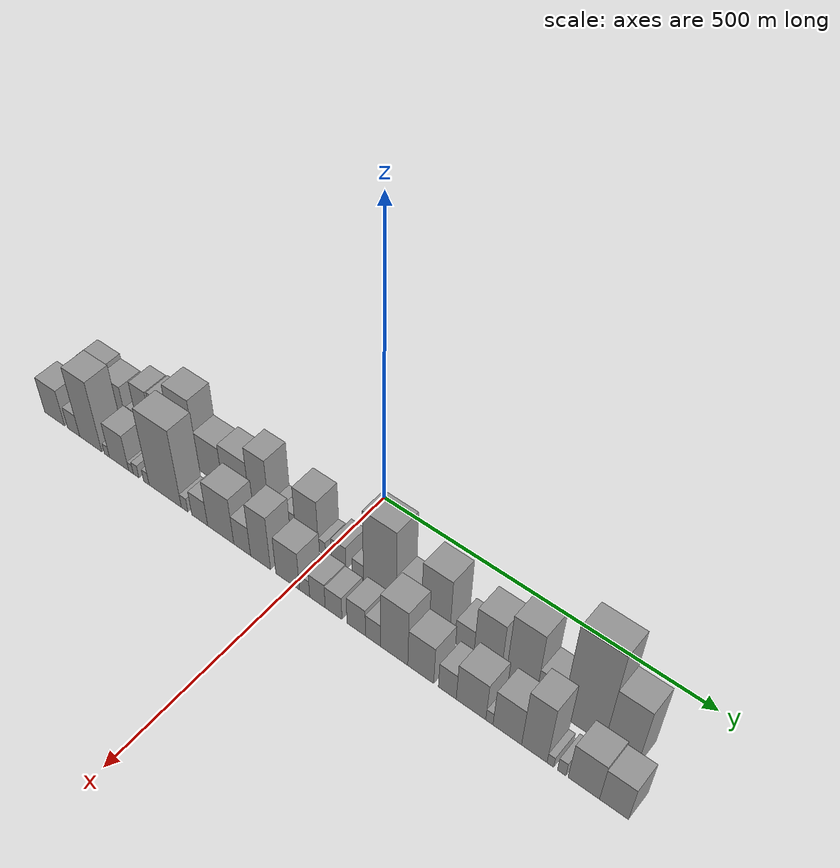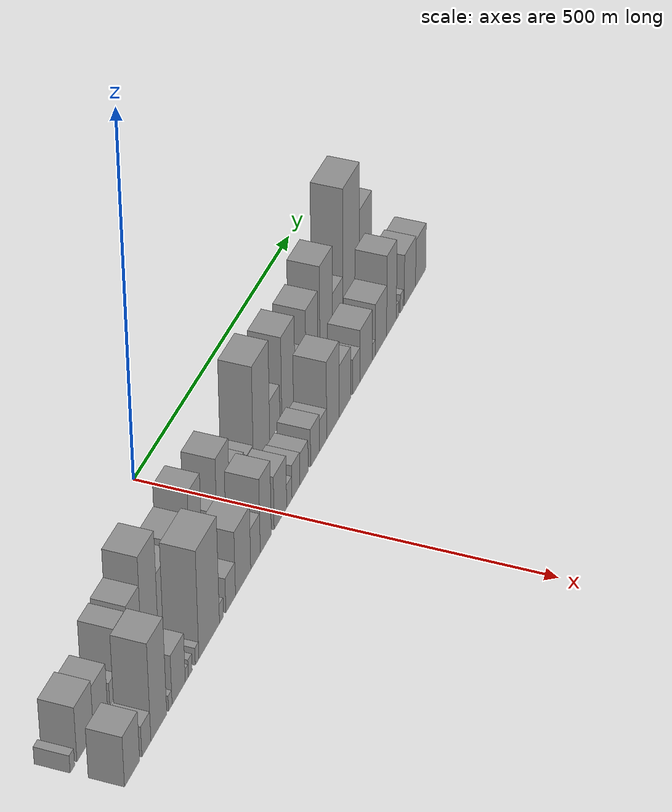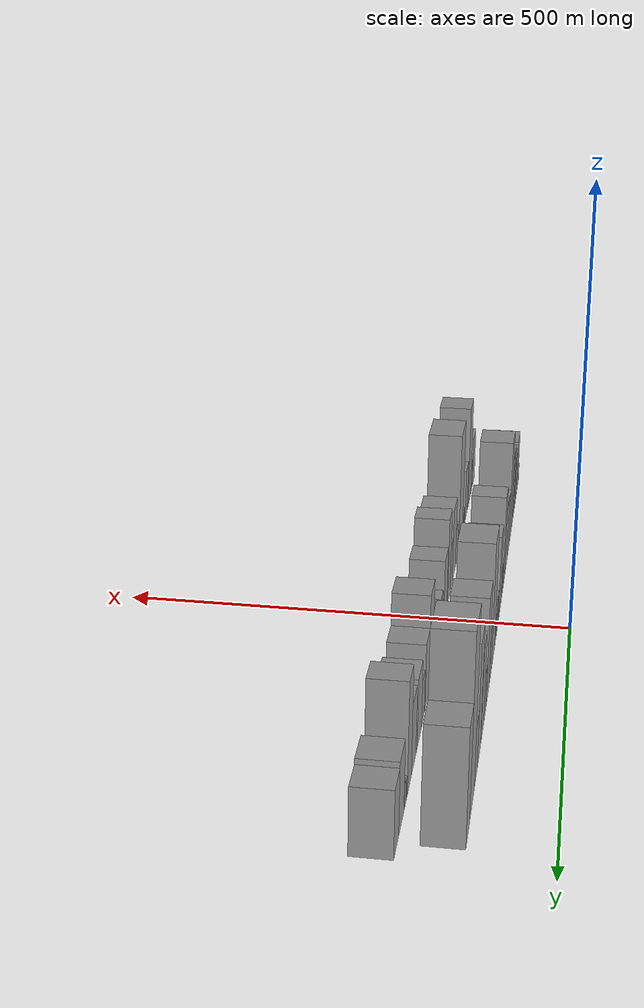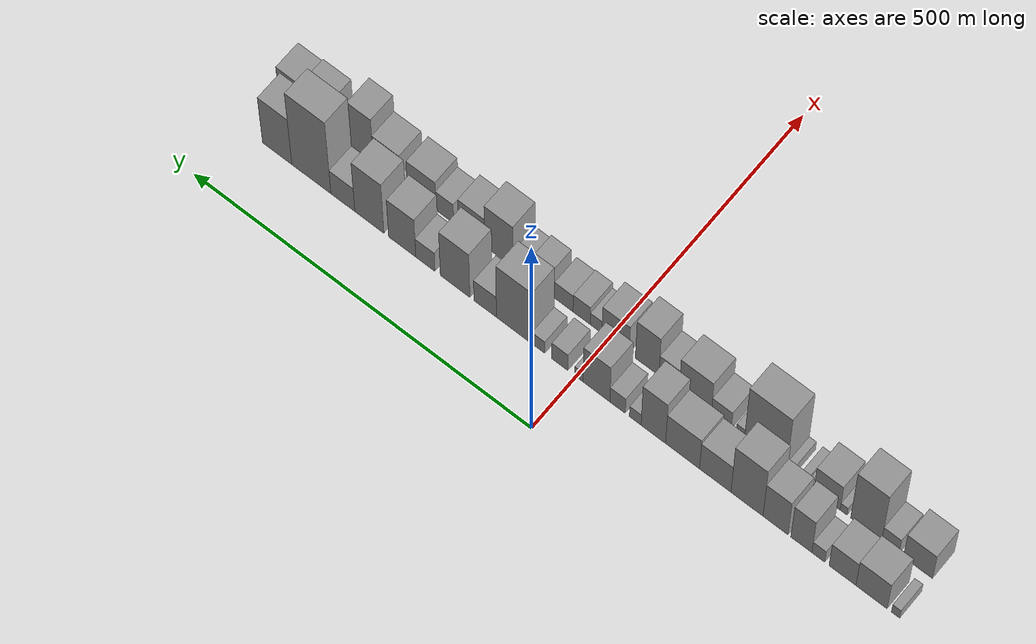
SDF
<sdf version="1.6">
 <world name="default">
  <scene>
   <sky><clouds><speed>12</speed></clouds></sky>
   <ambient>0.4 0.4 0.4 1</ambient>
   <background>0.7 0.7 0.7 1</background>
   <shadows>1</shadows>
  </scene>
  <gravity>0 0 -9.8066</gravity>
  <magnetic_field>6e-06 2.3e-05 -4.2e-05</magnetic_field>
  <physics default="0" name="default_physics" type="ode">
   <ode>
    <solver>
     <type>quick</type>
     <iters>10</iters>
     <sor>1.0</sor>
     <use_dynamic_moi_rescaling>0</use_dynamic_moi_rescaling>
    </solver>
    <constraints>
     <cfm>0</cfm>
     <erp>0.2</erp>
     <contact_max_correcting_vel>100</contact_max_correcting_vel>
     <contact_surface_layer>0.001</contact_surface_layer>
    </constraints>
   </ode>
   <max_step_size>0.004</max_step_size>
   <real_time_factor>1</real_time_factor>
   <real_time_update_rate>250</real_time_update_rate>
  </physics>
  <light name="sun" type="directional">
   <pose>0 0 10 0 0 0</pose>
   <diffuse>0.8 0.8 0.8 1</diffuse>
   <specular>0.2 0.2 0.2 1</specular>
   <attenuation>
    <range>1000</range>
    <constant>0.9</constant>
    <linear>0.01</linear>
    <quadratic>0.001</quadratic>
   </attenuation>
   <direction>-0.5 0.1 -0.9</direction>
  </light>
  <model name="building_1">
   <static>1</static>
   <pose>100.0000 -454.2006 0 0.000000 0.000000 0.000000</pose>
   <link name="link">
    <pose>0 0 12.00 0 0 0</pose>
    <collision name="collision"><geometry><box><size>40.0000 11.5988 24.0000</size></box></geometry></collision>
    <visual name="visual">
     <cast_shadows>0</cast_shadows>
     <geometry><box><size>40.0000 11.5988 24.0000</size></box></geometry>
     <material>
      <script>
       <uri>model://grey_wall/materials/scripts</uri>
       <uri>model://grey_wall/materials/textures</uri>
       <name>vrc/grey_wall</name>
      </script>
     </material>
    </visual>
   </link>
  </model>
  <model name="building_2">
   <static>1</static>
   <pose>100.0000 -420.6430 0 0.000000 0.000000 0.000000</pose>
   <link name="link">
    <pose>0 0 37.50 0 0 0</pose>
    <collision name="collision"><geometry><box><size>40.0000 43.5163 75.0000</size></box></geometry></collision>
    <visual name="visual">
     <cast_shadows>0</cast_shadows>
     <geometry><box><size>40.0000 43.5163 75.0000</size></box></geometry>
     <material>
      <script>
       <uri>model://grey_wall/materials/scripts</uri>
       <uri>model://grey_wall/materials/textures</uri>
       <name>vrc/grey_wall</name>
      </script>
     </material>
    </visual>
   </link>
  </model>
  <model name="building_3">
   <static>1</static>
   <pose>100.0000 -380.0215 0 0.000000 0.000000 0.000000</pose>
   <link name="link">
    <pose>0 0 33.00 0 0 0</pose>
    <collision name="collision"><geometry><box><size>40.0000 37.7266 66.0000</size></box></geometry></collision>
    <visual name="visual">
     <cast_shadows>0</cast_shadows>
     <geometry><box><size>40.0000 37.7266 66.0000</size></box></geometry>
     <material>
      <script>
       <uri>model://grey_wall/materials/scripts</uri>
       <uri>model://grey_wall/materials/textures</uri>
       <name>vrc/grey_wall</name>
      </script>
     </material>
    </visual>
   </link>
  </model>
  <model name="building_4">
   <static>1</static>
   <pose>100.0000 -346.0598 0 0.000000 0.000000 0.000000</pose>
   <link name="link">
    <pose>0 0 16.50 0 0 0</pose>
    <collision name="collision"><geometry><box><size>40.0000 18.1968 33.0000</size></box></geometry></collision>
    <visual name="visual">
     <cast_shadows>0</cast_shadows>
     <geometry><box><size>40.0000 18.1968 33.0000</size></box></geometry>
     <material>
      <script>
       <uri>model://grey_wall/materials/scripts</uri>
       <uri>model://grey_wall/materials/textures</uri>
       <name>vrc/grey_wall</name>
      </script>
     </material>
    </visual>
   </link>
  </model>
  <model name="building_5">
   <static>1</static>
   <pose>100.0000 -322.1338 0 0.000000 0.000000 0.000000</pose>
   <link name="link">
    <pose>0 0 46.50 0 0 0</pose>
    <collision name="collision"><geometry><box><size>40.0000 29.6552 93.0000</size></box></geometry></collision>
    <visual name="visual">
     <cast_shadows>0</cast_shadows>
     <geometry><box><size>40.0000 29.6552 93.0000</size></box></geometry>
     <material>
      <script>
       <uri>model://grey_wall/materials/scripts</uri>
       <uri>model://grey_wall/materials/textures</uri>
       <name>vrc/grey_wall</name>
      </script>
     </material>
    </visual>
   </link>
  </model>
  <model name="building_6">
   <static>1</static>
   <pose>100.0000 -285.5968 0 0.000000 0.000000 0.000000</pose>
   <link name="link">
    <pose>0 0 48.00 0 0 0</pose>
    <collision name="collision"><geometry><box><size>40.0000 35.4189 96.0000</size></box></geometry></collision>
    <visual name="visual">
     <cast_shadows>0</cast_shadows>
     <geometry><box><size>40.0000 35.4189 96.0000</size></box></geometry>
     <material>
      <script>
       <uri>model://grey_wall/materials/scripts</uri>
       <uri>model://grey_wall/materials/textures</uri>
       <name>vrc/grey_wall</name>
      </script>
     </material>
    </visual>
   </link>
  </model>
  <model name="building_7">
   <static>1</static>
   <pose>100.0000 -245.2105 0 0.000000 0.000000 0.000000</pose>
   <link name="link">
    <pose>0 0 67.50 0 0 0</pose>
    <collision name="collision"><geometry><box><size>40.0000 45.3537 135.0000</size></box></geometry></collision>
    <visual name="visual">
     <cast_shadows>0</cast_shadows>
     <geometry><box><size>40.0000 45.3537 135.0000</size></box></geometry>
     <material>
      <script>
       <uri>model://grey_wall/materials/scripts</uri>
       <uri>model://grey_wall/materials/textures</uri>
       <name>vrc/grey_wall</name>
      </script>
     </material>
    </visual>
   </link>
  </model>
  <model name="building_8">
   <static>1</static>
   <pose>100.0000 -200.1541 0 0.000000 0.000000 0.000000</pose>
   <link name="link">
    <pose>0 0 37.50 0 0 0</pose>
    <collision name="collision"><geometry><box><size>40.0000 44.7592 75.0000</size></box></geometry></collision>
    <visual name="visual">
     <cast_shadows>0</cast_shadows>
     <geometry><box><size>40.0000 44.7592 75.0000</size></box></geometry>
     <material>
      <script>
       <uri>model://grey_wall/materials/scripts</uri>
       <uri>model://grey_wall/materials/textures</uri>
       <name>vrc/grey_wall</name>
      </script>
     </material>
    </visual>
   </link>
  </model>
  <model name="building_9">
   <static>1</static>
   <pose>100.0000 -153.4599 0 0.000000 0.000000 0.000000</pose>
   <link name="link">
    <pose>0 0 42.00 0 0 0</pose>
    <collision name="collision"><geometry><box><size>40.0000 48.6293 84.0000</size></box></geometry></collision>
    <visual name="visual">
     <cast_shadows>0</cast_shadows>
     <geometry><box><size>40.0000 48.6293 84.0000</size></box></geometry>
     <material>
      <script>
       <uri>model://grey_wall/materials/scripts</uri>
       <uri>model://grey_wall/materials/textures</uri>
       <name>vrc/grey_wall</name>
      </script>
     </material>
    </visual>
   </link>
  </model>
  <model name="building_10">
   <static>1</static>
   <pose>100.0000 -111.5275 0 0.000000 0.000000 0.000000</pose>
   <link name="link">
    <pose>0 0 57.00 0 0 0</pose>
    <collision name="collision"><geometry><box><size>40.0000 35.2354 114.0000</size></box></geometry></collision>
    <visual name="visual">
     <cast_shadows>0</cast_shadows>
     <geometry><box><size>40.0000 35.2354 114.0000</size></box></geometry>
     <material>
      <script>
       <uri>model://grey_wall/materials/scripts</uri>
       <uri>model://grey_wall/materials/textures</uri>
       <name>vrc/grey_wall</name>
      </script>
     </material>
    </visual>
   </link>
  </model>
  <model name="building_11">
   <static>1</static>
   <pose>100.0000 -85.5345 0 0.000000 0.000000 0.000000</pose>
   <link name="link">
    <pose>0 0 15.00 0 0 0</pose>
    <collision name="collision"><geometry><box><size>40.0000 16.7506 30.0000</size></box></geometry></collision>
    <visual name="visual">
     <cast_shadows>0</cast_shadows>
     <geometry><box><size>40.0000 16.7506 30.0000</size></box></geometry>
     <material>
      <script>
       <uri>model://grey_wall/materials/scripts</uri>
       <uri>model://grey_wall/materials/textures</uri>
       <name>vrc/grey_wall</name>
      </script>
     </material>
    </visual>
   </link>
  </model>
  <model name="building_12">
   <static>1</static>
   <pose>100.0000 -60.0471 0 0.000000 0.000000 0.000000</pose>
   <link name="link">
    <pose>0 0 21.00 0 0 0</pose>
    <collision name="collision"><geometry><box><size>40.0000 22.2241 42.0000</size></box></geometry></collision>
    <visual name="visual">
     <cast_shadows>0</cast_shadows>
     <geometry><box><size>40.0000 22.2241 42.0000</size></box></geometry>
     <material>
      <script>
       <uri>model://grey_wall/materials/scripts</uri>
       <uri>model://grey_wall/materials/textures</uri>
       <name>vrc/grey_wall</name>
      </script>
     </material>
    </visual>
   </link>
  </model>
  <model name="building_13">
   <static>1</static>
   <pose>100.0000 -29.5227 0 0.000000 0.000000 0.000000</pose>
   <link name="link">
    <pose>0 0 49.50 0 0 0</pose>
    <collision name="collision"><geometry><box><size>40.0000 38.8247 99.0000</size></box></geometry></collision>
    <visual name="visual">
     <cast_shadows>0</cast_shadows>
     <geometry><box><size>40.0000 38.8247 99.0000</size></box></geometry>
     <material>
      <script>
       <uri>model://grey_wall/materials/scripts</uri>
       <uri>model://grey_wall/materials/textures</uri>
       <name>vrc/grey_wall</name>
      </script>
     </material>
    </visual>
   </link>
  </model>
  <model name="building_14">
   <static>1</static>
   <pose>100.0000 -4.1853 0 0.000000 0.000000 0.000000</pose>
   <link name="link">
    <pose>0 0 13.50 0 0 0</pose>
    <collision name="collision"><geometry><box><size>40.0000 11.8502 27.0000</size></box></geometry></collision>
    <visual name="visual">
     <cast_shadows>0</cast_shadows>
     <geometry><box><size>40.0000 11.8502 27.0000</size></box></geometry>
     <material>
      <script>
       <uri>model://grey_wall/materials/scripts</uri>
       <uri>model://grey_wall/materials/textures</uri>
       <name>vrc/grey_wall</name>
      </script>
     </material>
    </visual>
   </link>
  </model>
  <model name="building_15">
   <static>1</static>
   <pose>100.0000 23.5101 0 0.000000 0.000000 0.000000</pose>
   <link name="link">
    <pose>0 0 22.50 0 0 0</pose>
    <collision name="collision"><geometry><box><size>40.0000 23.5405 45.0000</size></box></geometry></collision>
    <visual name="visual">
     <cast_shadows>0</cast_shadows>
     <geometry><box><size>40.0000 23.5405 45.0000</size></box></geometry>
     <material>
      <script>
       <uri>model://grey_wall/materials/scripts</uri>
       <uri>model://grey_wall/materials/textures</uri>
       <name>vrc/grey_wall</name>
      </script>
     </material>
    </visual>
   </link>
  </model>
  <model name="building_16">
   <static>1</static>
   <pose>100.0000 54.6644 0 0.000000 0.000000 0.000000</pose>
   <link name="link">
    <pose>0 0 16.50 0 0 0</pose>
    <collision name="collision"><geometry><box><size>40.0000 18.7681 33.0000</size></box></geometry></collision>
    <visual name="visual">
     <cast_shadows>0</cast_shadows>
     <geometry><box><size>40.0000 18.7681 33.0000</size></box></geometry>
     <material>
      <script>
       <uri>model://grey_wall/materials/scripts</uri>
       <uri>model://grey_wall/materials/textures</uri>
       <name>vrc/grey_wall</name>
      </script>
     </material>
    </visual>
   </link>
  </model>
  <model name="building_17">
   <static>1</static>
   <pose>100.0000 90.0354 0 0.000000 0.000000 0.000000</pose>
   <link name="link">
    <pose>0 0 72.00 0 0 0</pose>
    <collision name="collision"><geometry><box><size>40.0000 51.9739 144.0000</size></box></geometry></collision>
    <visual name="visual">
     <cast_shadows>0</cast_shadows>
     <geometry><box><size>40.0000 51.9739 144.0000</size></box></geometry>
     <material>
      <script>
       <uri>model://grey_wall/materials/scripts</uri>
       <uri>model://grey_wall/materials/textures</uri>
       <name>vrc/grey_wall</name>
      </script>
     </material>
    </visual>
   </link>
  </model>
  <model name="building_18">
   <static>1</static>
   <pose>100.0000 132.4919 0 0.000000 0.000000 0.000000</pose>
   <link name="link">
    <pose>0 0 28.50 0 0 0</pose>
    <collision name="collision"><geometry><box><size>40.0000 32.9392 57.0000</size></box></geometry></collision>
    <visual name="visual">
     <cast_shadows>0</cast_shadows>
     <geometry><box><size>40.0000 32.9392 57.0000</size></box></geometry>
     <material>
      <script>
       <uri>model://grey_wall/materials/scripts</uri>
       <uri>model://grey_wall/materials/textures</uri>
       <name>vrc/grey_wall</name>
      </script>
     </material>
    </visual>
   </link>
  </model>
  <model name="building_19">
   <static>1</static>
   <pose>100.0000 176.7335 0 0.000000 0.000000 0.000000</pose>
   <link name="link">
    <pose>0 0 60.00 0 0 0</pose>
    <collision name="collision"><geometry><box><size>40.0000 43.5439 120.0000</size></box></geometry></collision>
    <visual name="visual">
     <cast_shadows>0</cast_shadows>
     <geometry><box><size>40.0000 43.5439 120.0000</size></box></geometry>
     <material>
      <script>
       <uri>model://grey_wall/materials/scripts</uri>
       <uri>model://grey_wall/materials/textures</uri>
       <name>vrc/grey_wall</name>
      </script>
     </material>
    </visual>
   </link>
  </model>
  <model name="building_20">
   <static>1</static>
   <pose>100.0000 220.7107 0 0.000000 0.000000 0.000000</pose>
   <link name="link">
    <pose>0 0 25.50 0 0 0</pose>
    <collision name="collision"><geometry><box><size>40.0000 28.4106 51.0000</size></box></geometry></collision>
    <visual name="visual">
     <cast_shadows>0</cast_shadows>
     <geometry><box><size>40.0000 28.4106 51.0000</size></box></geometry>
     <material>
      <script>
       <uri>model://grey_wall/materials/scripts</uri>
       <uri>model://grey_wall/materials/textures</uri>
       <name>vrc/grey_wall</name>
      </script>
     </material>
    </visual>
   </link>
  </model>
  <model name="building_21">
   <static>1</static>
   <pose>100.0000 255.0398 0 0.000000 0.000000 0.000000</pose>
   <link name="link">
    <pose>0 0 51.00 0 0 0</pose>
    <collision name="collision"><geometry><box><size>40.0000 40.2476 102.0000</size></box></geometry></collision>
    <visual name="visual">
     <cast_shadows>0</cast_shadows>
     <geometry><box><size>40.0000 40.2476 102.0000</size></box></geometry>
     <material>
      <script>
       <uri>model://grey_wall/materials/scripts</uri>
       <uri>model://grey_wall/materials/textures</uri>
       <name>vrc/grey_wall</name>
      </script>
     </material>
    </visual>
   </link>
  </model>
  <model name="building_22">
   <static>1</static>
   <pose>100.0000 303.8524 0 0.000000 0.000000 0.000000</pose>
   <link name="link">
    <pose>0 0 66.00 0 0 0</pose>
    <collision name="collision"><geometry><box><size>40.0000 43.3776 132.0000</size></box></geometry></collision>
    <visual name="visual">
     <cast_shadows>0</cast_shadows>
     <geometry><box><size>40.0000 43.3776 132.0000</size></box></geometry>
     <material>
      <script>
       <uri>model://grey_wall/materials/scripts</uri>
       <uri>model://grey_wall/materials/textures</uri>
       <name>vrc/grey_wall</name>
      </script>
     </material>
    </visual>
   </link>
  </model>
  <model name="building_23">
   <static>1</static>
   <pose>100.0000 343.4421 0 0.000000 0.000000 0.000000</pose>
   <link name="link">
    <pose>0 0 31.50 0 0 0</pose>
    <collision name="collision"><geometry><box><size>40.0000 35.8019 63.0000</size></box></geometry></collision>
    <visual name="visual">
     <cast_shadows>0</cast_shadows>
     <geometry><box><size>40.0000 35.8019 63.0000</size></box></geometry>
     <material>
      <script>
       <uri>model://grey_wall/materials/scripts</uri>
       <uri>model://grey_wall/materials/textures</uri>
       <name>vrc/grey_wall</name>
      </script>
     </material>
    </visual>
   </link>
  </model>
  <model name="building_24">
   <static>1</static>
   <pose>100.0000 390.6516 0 0.000000 0.000000 0.000000</pose>
   <link name="link">
    <pose>0 0 94.50 0 0 0</pose>
    <collision name="collision"><geometry><box><size>40.0000 58.6172 189.0000</size></box></geometry></collision>
    <visual name="visual">
     <cast_shadows>0</cast_shadows>
     <geometry><box><size>40.0000 58.6172 189.0000</size></box></geometry>
     <material>
      <script>
       <uri>model://grey_wall/materials/scripts</uri>
       <uri>model://grey_wall/materials/textures</uri>
       <name>vrc/grey_wall</name>
      </script>
     </material>
    </visual>
   </link>
  </model>
  <model name="building_25">
   <static>1</static>
   <pose>100.0000 442.0626 0 0.000000 0.000000 0.000000</pose>
   <link name="link">
    <pose>0 0 60.00 0 0 0</pose>
    <collision name="collision"><geometry><box><size>40.0000 44.2049 120.0000</size></box></geometry></collision>
    <visual name="visual">
     <cast_shadows>0</cast_shadows>
     <geometry><box><size>40.0000 44.2049 120.0000</size></box></geometry>
     <material>
      <script>
       <uri>model://grey_wall/materials/scripts</uri>
       <uri>model://grey_wall/materials/textures</uri>
       <name>vrc/grey_wall</name>
      </script>
     </material>
    </visual>
   </link>
  </model>
  <model name="building_26">
   <static>1</static>
   <pose>160.0000 -439.7260 0 0.000000 0.000000 0.000000</pose>
   <link name="link">
    <pose>0 0 34.50 0 0 0</pose>
    <collision name="collision"><geometry><box><size>40.0000 40.5480 69.0000</size></box></geometry></collision>
    <visual name="visual">
     <cast_shadows>0</cast_shadows>
     <geometry><box><size>40.0000 40.5480 69.0000</size></box></geometry>
     <material>
      <script>
       <uri>model://grey_wall/materials/scripts</uri>
       <uri>model://grey_wall/materials/textures</uri>
       <name>vrc/grey_wall</name>
      </script>
     </material>
    </visual>
   </link>
  </model>
  <model name="building_27">
   <static>1</static>
   <pose>160.0000 -401.2304 0 0.000000 0.000000 0.000000</pose>
   <link name="link">
    <pose>0 0 21.00 0 0 0</pose>
    <collision name="collision"><geometry><box><size>40.0000 24.4432 42.0000</size></box></geometry></collision>
    <visual name="visual">
     <cast_shadows>0</cast_shadows>
     <geometry><box><size>40.0000 24.4432 42.0000</size></box></geometry>
     <material>
      <script>
       <uri>model://grey_wall/materials/scripts</uri>
       <uri>model://grey_wall/materials/textures</uri>
       <name>vrc/grey_wall</name>
      </script>
     </material>
    </visual>
   </link>
  </model>
  <model name="building_28">
   <static>1</static>
   <pose>160.0000 -367.2054 0 0.000000 0.000000 0.000000</pose>
   <link name="link">
    <pose>0 0 67.50 0 0 0</pose>
    <collision name="collision"><geometry><box><size>40.0000 43.6069 135.0000</size></box></geometry></collision>
    <visual name="visual">
     <cast_shadows>0</cast_shadows>
     <geometry><box><size>40.0000 43.6069 135.0000</size></box></geometry>
     <material>
      <script>
       <uri>model://grey_wall/materials/scripts</uri>
       <uri>model://grey_wall/materials/textures</uri>
       <name>vrc/grey_wall</name>
      </script>
     </material>
    </visual>
   </link>
  </model>
  <model name="building_29">
   <static>1</static>
   <pose>160.0000 -335.4916 0 0.000000 0.000000 0.000000</pose>
   <link name="link">
    <pose>0 0 10.50 0 0 0</pose>
    <collision name="collision"><geometry><box><size>40.0000 9.8207 21.0000</size></box></geometry></collision>
    <visual name="visual">
     <cast_shadows>0</cast_shadows>
     <geometry><box><size>40.0000 9.8207 21.0000</size></box></geometry>
     <material>
      <script>
       <uri>model://grey_wall/materials/scripts</uri>
       <uri>model://grey_wall/materials/textures</uri>
       <name>vrc/grey_wall</name>
      </script>
     </material>
    </visual>
   </link>
  </model>
  <model name="building_30">
   <static>1</static>
   <pose>160.0000 -311.9870 0 0.000000 0.000000 0.000000</pose>
   <link name="link">
    <pose>0 0 34.50 0 0 0</pose>
    <collision name="collision"><geometry><box><size>40.0000 37.1885 69.0000</size></box></geometry></collision>
    <visual name="visual">
     <cast_shadows>0</cast_shadows>
     <geometry><box><size>40.0000 37.1885 69.0000</size></box></geometry>
     <material>
      <script>
       <uri>model://grey_wall/materials/scripts</uri>
       <uri>model://grey_wall/materials/textures</uri>
       <name>vrc/grey_wall</name>
      </script>
     </material>
    </visual>
   </link>
  </model>
  <model name="building_31">
   <static>1</static>
   <pose>160.0000 -289.0456 0 0.000000 0.000000 0.000000</pose>
   <link name="link">
    <pose>0 0 9.00 0 0 0</pose>
    <collision name="collision"><geometry><box><size>40.0000 8.6942 18.0000</size></box></geometry></collision>
    <visual name="visual">
     <cast_shadows>0</cast_shadows>
     <geometry><box><size>40.0000 8.6942 18.0000</size></box></geometry>
     <material>
      <script>
       <uri>model://grey_wall/materials/scripts</uri>
       <uri>model://grey_wall/materials/textures</uri>
       <name>vrc/grey_wall</name>
      </script>
     </material>
    </visual>
   </link>
  </model>
  <model name="building_32">
   <static>1</static>
   <pose>160.0000 -279.2992 0 0.000000 0.000000 0.000000</pose>
   <link name="link">
    <pose>0 0 12.00 0 0 0</pose>
    <collision name="collision"><geometry><box><size>40.0000 10.7986 24.0000</size></box></geometry></collision>
    <visual name="visual">
     <cast_shadows>0</cast_shadows>
     <geometry><box><size>40.0000 10.7986 24.0000</size></box></geometry>
     <material>
      <script>
       <uri>model://grey_wall/materials/scripts</uri>
       <uri>model://grey_wall/materials/textures</uri>
       <name>vrc/grey_wall</name>
      </script>
     </material>
    </visual>
   </link>
  </model>
  <model name="building_33">
   <static>1</static>
   <pose>160.0000 -259.7788 0 0.000000 0.000000 0.000000</pose>
   <link name="link">
    <pose>0 0 12.00 0 0 0</pose>
    <collision name="collision"><geometry><box><size>40.0000 10.2421 24.0000</size></box></geometry></collision>
    <visual name="visual">
     <cast_shadows>0</cast_shadows>
     <geometry><box><size>40.0000 10.2421 24.0000</size></box></geometry>
     <material>
      <script>
       <uri>model://grey_wall/materials/scripts</uri>
       <uri>model://grey_wall/materials/textures</uri>
       <name>vrc/grey_wall</name>
      </script>
     </material>
    </visual>
   </link>
  </model>
  <model name="building_34">
   <static>1</static>
   <pose>160.0000 -224.7416 0 0.000000 0.000000 0.000000</pose>
   <link name="link">
    <pose>0 0 75.00 0 0 0</pose>
    <collision name="collision"><geometry><box><size>40.0000 59.8323 150.0000</size></box></geometry></collision>
    <visual name="visual">
     <cast_shadows>0</cast_shadows>
     <geometry><box><size>40.0000 59.8323 150.0000</size></box></geometry>
     <material>
      <script>
       <uri>model://grey_wall/materials/scripts</uri>
       <uri>model://grey_wall/materials/textures</uri>
       <name>vrc/grey_wall</name>
      </script>
     </material>
    </visual>
   </link>
  </model>
  <model name="building_35">
   <static>1</static>
   <pose>160.0000 -188.9271 0 0.000000 0.000000 0.000000</pose>
   <link name="link">
    <pose>0 0 13.50 0 0 0</pose>
    <collision name="collision"><geometry><box><size>40.0000 11.7967 27.0000</size></box></geometry></collision>
    <visual name="visual">
     <cast_shadows>0</cast_shadows>
     <geometry><box><size>40.0000 11.7967 27.0000</size></box></geometry>
     <material>
      <script>
       <uri>model://grey_wall/materials/scripts</uri>
       <uri>model://grey_wall/materials/textures</uri>
       <name>vrc/grey_wall</name>
      </script>
     </material>
    </visual>
   </link>
  </model>
  <model name="building_36">
   <static>1</static>
   <pose>160.0000 -161.6458 0 0.000000 0.000000 0.000000</pose>
   <link name="link">
    <pose>0 0 24.00 0 0 0</pose>
    <collision name="collision"><geometry><box><size>40.0000 28.7657 48.0000</size></box></geometry></collision>
    <visual name="visual">
     <cast_shadows>0</cast_shadows>
     <geometry><box><size>40.0000 28.7657 48.0000</size></box></geometry>
     <material>
      <script>
       <uri>model://grey_wall/materials/scripts</uri>
       <uri>model://grey_wall/materials/textures</uri>
       <name>vrc/grey_wall</name>
      </script>
     </material>
    </visual>
   </link>
  </model>
  <model name="building_37">
   <static>1</static>
   <pose>160.0000 -124.2231 0 0.000000 0.000000 0.000000</pose>
   <link name="link">
    <pose>0 0 45.00 0 0 0</pose>
    <collision name="collision"><geometry><box><size>40.0000 46.0799 90.0000</size></box></geometry></collision>
    <visual name="visual">
     <cast_shadows>0</cast_shadows>
     <geometry><box><size>40.0000 46.0799 90.0000</size></box></geometry>
     <material>
      <script>
       <uri>model://grey_wall/materials/scripts</uri>
       <uri>model://grey_wall/materials/textures</uri>
       <name>vrc/grey_wall</name>
      </script>
     </material>
    </visual>
   </link>
  </model>
  <model name="building_38">
   <static>1</static>
   <pose>160.0000 -86.6168 0 0.000000 0.000000 0.000000</pose>
   <link name="link">
    <pose>0 0 28.50 0 0 0</pose>
    <collision name="collision"><geometry><box><size>40.0000 29.1327 57.0000</size></box></geometry></collision>
    <visual name="visual">
     <cast_shadows>0</cast_shadows>
     <geometry><box><size>40.0000 29.1327 57.0000</size></box></geometry>
     <material>
      <script>
       <uri>model://grey_wall/materials/scripts</uri>
       <uri>model://grey_wall/materials/textures</uri>
       <name>vrc/grey_wall</name>
      </script>
     </material>
    </visual>
   </link>
  </model>
  <model name="building_39">
   <static>1</static>
   <pose>160.0000 -55.0306 0 0.000000 0.000000 0.000000</pose>
   <link name="link">
    <pose>0 0 52.50 0 0 0</pose>
    <collision name="collision"><geometry><box><size>40.0000 34.0397 105.0000</size></box></geometry></collision>
    <visual name="visual">
     <cast_shadows>0</cast_shadows>
     <geometry><box><size>40.0000 34.0397 105.0000</size></box></geometry>
     <material>
      <script>
       <uri>model://grey_wall/materials/scripts</uri>
       <uri>model://grey_wall/materials/textures</uri>
       <name>vrc/grey_wall</name>
      </script>
     </material>
    </visual>
   </link>
  </model>
  <model name="building_40">
   <static>1</static>
   <pose>160.0000 -9.2905 0 0.000000 0.000000 0.000000</pose>
   <link name="link">
    <pose>0 0 37.50 0 0 0</pose>
    <collision name="collision"><geometry><box><size>40.0000 39.4404 75.0000</size></box></geometry></collision>
    <visual name="visual">
     <cast_shadows>0</cast_shadows>
     <geometry><box><size>40.0000 39.4404 75.0000</size></box></geometry>
     <material>
      <script>
       <uri>model://grey_wall/materials/scripts</uri>
       <uri>model://grey_wall/materials/textures</uri>
       <name>vrc/grey_wall</name>
      </script>
     </material>
    </visual>
   </link>
  </model>
  <model name="building_41">
   <static>1</static>
   <pose>160.0000 18.9130 0 0.000000 0.000000 0.000000</pose>
   <link name="link">
    <pose>0 0 16.50 0 0 0</pose>
    <collision name="collision"><geometry><box><size>40.0000 16.9666 33.0000</size></box></geometry></collision>
    <visual name="visual">
     <cast_shadows>0</cast_shadows>
     <geometry><box><size>40.0000 16.9666 33.0000</size></box></geometry>
     <material>
      <script>
       <uri>model://grey_wall/materials/scripts</uri>
       <uri>model://grey_wall/materials/textures</uri>
       <name>vrc/grey_wall</name>
      </script>
     </material>
    </visual>
   </link>
  </model>
  <model name="building_42">
   <static>1</static>
   <pose>160.0000 40.0194 0 0.000000 0.000000 0.000000</pose>
   <link name="link">
    <pose>0 0 24.00 0 0 0</pose>
    <collision name="collision"><geometry><box><size>40.0000 25.2462 48.0000</size></box></geometry></collision>
    <visual name="visual">
     <cast_shadows>0</cast_shadows>
     <geometry><box><size>40.0000 25.2462 48.0000</size></box></geometry>
     <material>
      <script>
       <uri>model://grey_wall/materials/scripts</uri>
       <uri>model://grey_wall/materials/textures</uri>
       <name>vrc/grey_wall</name>
      </script>
     </material>
    </visual>
   </link>
  </model>
  <model name="building_43">
   <static>1</static>
   <pose>160.0000 66.1366 0 0.000000 0.000000 0.000000</pose>
   <link name="link">
    <pose>0 0 22.50 0 0 0</pose>
    <collision name="collision"><geometry><box><size>40.0000 26.9883 45.0000</size></box></geometry></collision>
    <visual name="visual">
     <cast_shadows>0</cast_shadows>
     <geometry><box><size>40.0000 26.9883 45.0000</size></box></geometry>
     <material>
      <script>
       <uri>model://grey_wall/materials/scripts</uri>
       <uri>model://grey_wall/materials/textures</uri>
       <name>vrc/grey_wall</name>
      </script>
     </material>
    </visual>
   </link>
  </model>
  <model name="building_44">
   <static>1</static>
   <pose>160.0000 102.2230 0 0.000000 0.000000 0.000000</pose>
   <link name="link">
    <pose>0 0 27.00 0 0 0</pose>
    <collision name="collision"><geometry><box><size>40.0000 29.1845 54.0000</size></box></geometry></collision>
    <visual name="visual">
     <cast_shadows>0</cast_shadows>
     <geometry><box><size>40.0000 29.1845 54.0000</size></box></geometry>
     <material>
      <script>
       <uri>model://grey_wall/materials/scripts</uri>
       <uri>model://grey_wall/materials/textures</uri>
       <name>vrc/grey_wall</name>
      </script>
     </material>
    </visual>
   </link>
  </model>
  <model name="building_45">
   <static>1</static>
   <pose>160.0000 128.6711 0 0.000000 0.000000 0.000000</pose>
   <link name="link">
    <pose>0 0 22.50 0 0 0</pose>
    <collision name="collision"><geometry><box><size>40.0000 23.7118 45.0000</size></box></geometry></collision>
    <visual name="visual">
     <cast_shadows>0</cast_shadows>
     <geometry><box><size>40.0000 23.7118 45.0000</size></box></geometry>
     <material>
      <script>
       <uri>model://grey_wall/materials/scripts</uri>
       <uri>model://grey_wall/materials/textures</uri>
       <name>vrc/grey_wall</name>
      </script>
     </material>
    </visual>
   </link>
  </model>
  <model name="building_46">
   <static>1</static>
   <pose>160.0000 161.3128 0 0.000000 0.000000 0.000000</pose>
   <link name="link">
    <pose>0 0 55.50 0 0 0</pose>
    <collision name="collision"><geometry><box><size>40.0000 41.5717 111.0000</size></box></geometry></collision>
    <visual name="visual">
     <cast_shadows>0</cast_shadows>
     <geometry><box><size>40.0000 41.5717 111.0000</size></box></geometry>
     <material>
      <script>
       <uri>model://grey_wall/materials/scripts</uri>
       <uri>model://grey_wall/materials/textures</uri>
       <name>vrc/grey_wall</name>
      </script>
     </material>
    </visual>
   </link>
  </model>
  <model name="building_47">
   <static>1</static>
   <pose>160.0000 201.5888 0 0.000000 0.000000 0.000000</pose>
   <link name="link">
    <pose>0 0 37.50 0 0 0</pose>
    <collision name="collision"><geometry><box><size>40.0000 38.9803 75.0000</size></box></geometry></collision>
    <visual name="visual">
     <cast_shadows>0</cast_shadows>
     <geometry><box><size>40.0000 38.9803 75.0000</size></box></geometry>
     <material>
      <script>
       <uri>model://grey_wall/materials/scripts</uri>
       <uri>model://grey_wall/materials/textures</uri>
       <name>vrc/grey_wall</name>
      </script>
     </material>
    </visual>
   </link>
  </model>
  <model name="building_48">
   <static>1</static>
   <pose>160.0000 241.1781 0 0.000000 0.000000 0.000000</pose>
   <link name="link">
    <pose>0 0 25.50 0 0 0</pose>
    <collision name="collision"><geometry><box><size>40.0000 26.1982 51.0000</size></box></geometry></collision>
    <visual name="visual">
     <cast_shadows>0</cast_shadows>
     <geometry><box><size>40.0000 26.1982 51.0000</size></box></geometry>
     <material>
      <script>
       <uri>model://grey_wall/materials/scripts</uri>
       <uri>model://grey_wall/materials/textures</uri>
       <name>vrc/grey_wall</name>
      </script>
     </material>
    </visual>
   </link>
  </model>
  <model name="building_49">
   <static>1</static>
   <pose>160.0000 275.6750 0 0.000000 0.000000 0.000000</pose>
   <link name="link">
    <pose>0 0 37.50 0 0 0</pose>
    <collision name="collision"><geometry><box><size>40.0000 42.7956 75.0000</size></box></geometry></collision>
    <visual name="visual">
     <cast_shadows>0</cast_shadows>
     <geometry><box><size>40.0000 42.7956 75.0000</size></box></geometry>
     <material>
      <script>
       <uri>model://grey_wall/materials/scripts</uri>
       <uri>model://grey_wall/materials/textures</uri>
       <name>vrc/grey_wall</name>
      </script>
     </material>
    </visual>
   </link>
  </model>
  <model name="building_50">
   <static>1</static>
   <pose>160.0000 302.1805 0 0.000000 0.000000 0.000000</pose>
   <link name="link">
    <pose>0 0 12.00 0 0 0</pose>
    <collision name="collision"><geometry><box><size>40.0000 10.2154 24.0000</size></box></geometry></collision>
    <visual name="visual">
     <cast_shadows>0</cast_shadows>
     <geometry><box><size>40.0000 10.2154 24.0000</size></box></geometry>
     <material>
      <script>
       <uri>model://grey_wall/materials/scripts</uri>
       <uri>model://grey_wall/materials/textures</uri>
       <name>vrc/grey_wall</name>
      </script>
     </material>
    </visual>
   </link>
  </model>
  <model name="building_51">
   <static>1</static>
   <pose>160.0000 327.4246 0 0.000000 0.000000 0.000000</pose>
   <link name="link">
    <pose>0 0 37.50 0 0 0</pose>
    <collision name="collision"><geometry><box><size>40.0000 40.2727 75.0000</size></box></geometry></collision>
    <visual name="visual">
     <cast_shadows>0</cast_shadows>
     <geometry><box><size>40.0000 40.2727 75.0000</size></box></geometry>
     <material>
      <script>
       <uri>model://grey_wall/materials/scripts</uri>
       <uri>model://grey_wall/materials/textures</uri>
       <name>vrc/grey_wall</name>
      </script>
     </material>
    </visual>
   </link>
  </model>
  <model name="building_52">
   <static>1</static>
   <pose>160.0000 365.1325 0 0.000000 0.000000 0.000000</pose>
   <link name="link">
    <pose>0 0 58.50 0 0 0</pose>
    <collision name="collision"><geometry><box><size>40.0000 35.1432 117.0000</size></box></geometry></collision>
    <visual name="visual">
     <cast_shadows>0</cast_shadows>
     <geometry><box><size>40.0000 35.1432 117.0000</size></box></geometry>
     <material>
      <script>
       <uri>model://grey_wall/materials/scripts</uri>
       <uri>model://grey_wall/materials/textures</uri>
       <name>vrc/grey_wall</name>
      </script>
     </material>
    </visual>
   </link>
  </model>
  <model name="building_53">
   <static>1</static>
   <pose>160.0000 387.2762 0 0.000000 0.000000 0.000000</pose>
   <link name="link">
    <pose>0 0 10.50 0 0 0</pose>
    <collision name="collision"><geometry><box><size>40.0000 9.1443 21.0000</size></box></geometry></collision>
    <visual name="visual">
     <cast_shadows>0</cast_shadows>
     <geometry><box><size>40.0000 9.1443 21.0000</size></box></geometry>
     <material>
      <script>
       <uri>model://grey_wall/materials/scripts</uri>
       <uri>model://grey_wall/materials/textures</uri>
       <name>vrc/grey_wall</name>
      </script>
     </material>
    </visual>
   </link>
  </model>
  <model name="building_54">
   <static>1</static>
   <pose>160.0000 402.5595 0 0.000000 0.000000 0.000000</pose>
   <link name="link">
    <pose>0 0 13.50 0 0 0</pose>
    <collision name="collision"><geometry><box><size>40.0000 11.4223 27.0000</size></box></geometry></collision>
    <visual name="visual">
     <cast_shadows>0</cast_shadows>
     <geometry><box><size>40.0000 11.4223 27.0000</size></box></geometry>
     <material>
      <script>
       <uri>model://grey_wall/materials/scripts</uri>
       <uri>model://grey_wall/materials/textures</uri>
       <name>vrc/grey_wall</name>
      </script>
     </material>
    </visual>
   </link>
  </model>
  <model name="building_55">
   <static>1</static>
   <pose>160.0000 432.1628 0 0.000000 0.000000 0.000000</pose>
   <link name="link">
    <pose>0 0 37.50 0 0 0</pose>
    <collision name="collision"><geometry><box><size>40.0000 41.7843 75.0000</size></box></geometry></collision>
    <visual name="visual">
     <cast_shadows>0</cast_shadows>
     <geometry><box><size>40.0000 41.7843 75.0000</size></box></geometry>
     <material>
      <script>
       <uri>model://grey_wall/materials/scripts</uri>
       <uri>model://grey_wall/materials/textures</uri>
       <name>vrc/grey_wall</name>
      </script>
     </material>
    </visual>
   </link>
  </model>
  <model name="building_56">
   <static>1</static>
   <pose>160.0000 471.9444 0 0.000000 0.000000 0.000000</pose>
   <link name="link">
    <pose>0 0 34.50 0 0 0</pose>
    <collision name="collision"><geometry><box><size>40.0000 37.7790 69.0000</size></box></geometry></collision>
    <visual name="visual">
     <cast_shadows>0</cast_shadows>
     <geometry><box><size>40.0000 37.7790 69.0000</size></box></geometry>
     <material>
      <script>
       <uri>model://grey_wall/materials/scripts</uri>
       <uri>model://grey_wall/materials/textures</uri>
       <name>vrc/grey_wall</name>
      </script>
     </material>
    </visual>
   </link>
  </model>
 </world>
</sdf>
